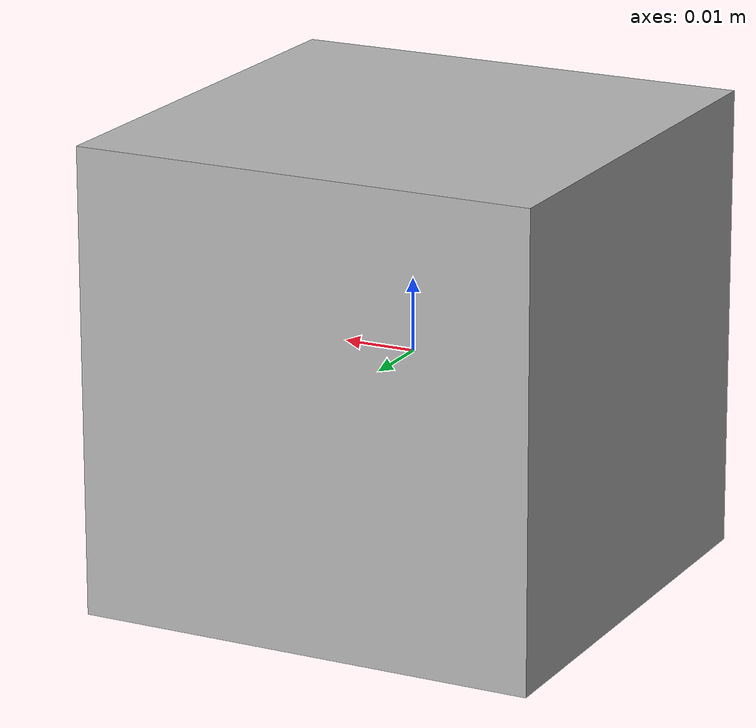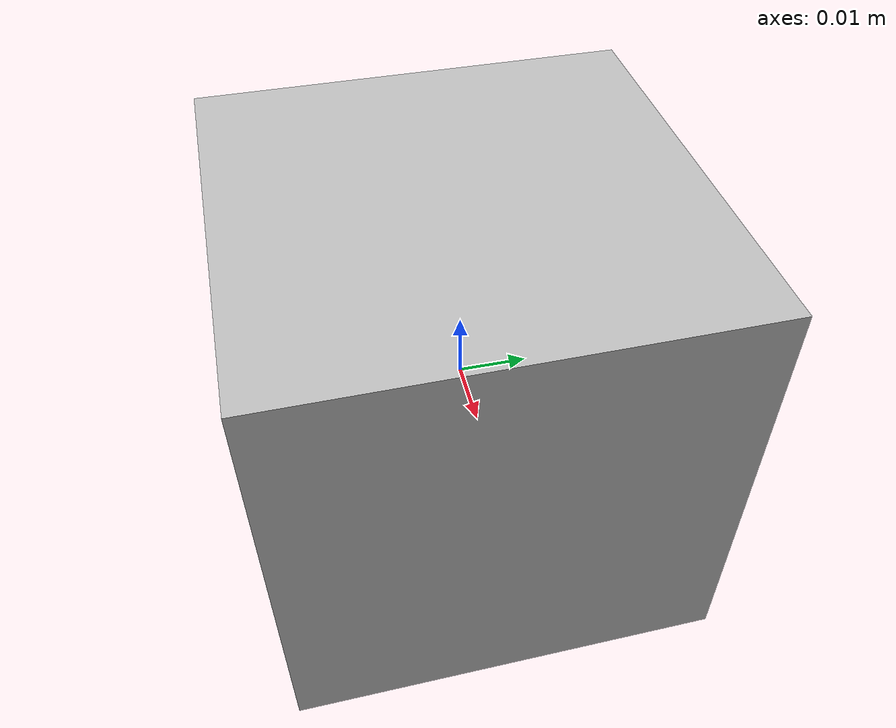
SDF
<sdf version="1.6">
  <model name="apriltag">
    <pose>0 0 0 0 0 0</pose> <!-- Initial position and orientation (x, y, z, roll, pitch, yaw) -->

    <link name="apriltag_link">
      <collision name="apriltag_collision">
        <geometry>
          <box>
            <size>0.0635 0.0635 0.0635</size> <!-- Size of the tag in meters (2.5 in x 2.5 in x 2.5 in) -->
          </box>
        </geometry>
      </collision>

      <visual name="apriltag_visual">
        <geometry>
          <box>
            <size>0.0635 0.0635 0.0635</size>
          </box>
        </geometry>
        <material>
          <lighting>1</lighting>
          <texture>
            <uri>model://RoboAgRL/imgs/tag36_11_00000.png</uri> <!-- Path to the PNG image -->
          </texture>
        </material>
      </visual>

      <inertial>
        <mass>0.1</mass> <!-- Mass of the cube in kg -->
        <inertia>
          <ixx>0.001</ixx>
          <iyy>0.001</iyy>
          <izz>0.001</izz>
          <ixy>0</ixy>
          <ixz>0</ixz>
          <iyz>0</iyz>
        </inertia>
      </inertial>
    </link>

    <static>false</static> <!-- Set to false to allow the cube to be dynamic and affected by physics -->
  </model>
</sdf>
